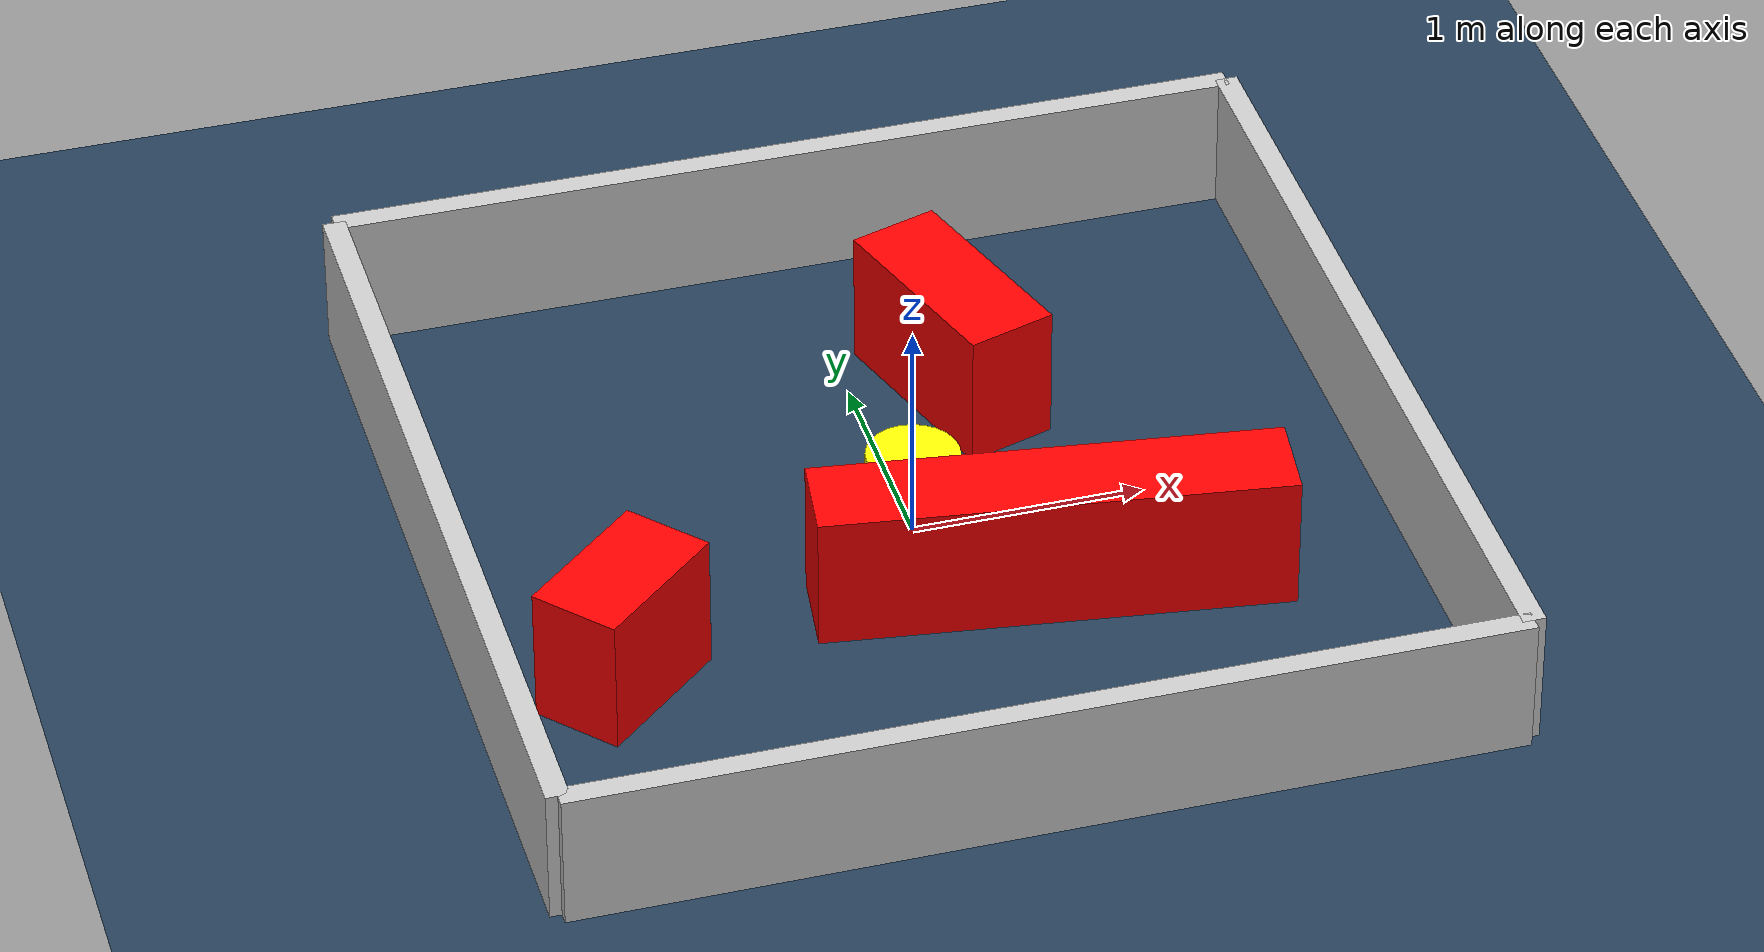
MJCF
<?xml version="1.0" ?>
<mujoco model="generated_environment">
  <option timestep="0.01" integrator="RK4" cone="elliptic"/>
  <default>
    <geom density="1"/>
  </default>
  <asset>
    <texture builtin="gradient" height="3072" rgb1="0.3 0.5 0.7" rgb2="0 0 0" type="skybox" width="512"/>
    <texture builtin="checker" height="300" mark="edge" markrgb="0.8 0.8 0.8" name="groundplane" rgb1="0.2 0.3 0.4" rgb2="0.1 0.2 0.3" type="2d" width="300"/>
    <material name="groundplane" reflectance="0.2" texrepeat="5 5" texture="groundplane" texuniform="true"/>
    <material name="robot" rgba="0.0 1.0 0.0 1"/>
  </asset>
  <worldbody>
    <light dir="0 0 -1" directional="true" pos="0 0 1.5"/>
    <geom condim="4" friction="1.0 0.005 0.001" material="groundplane" name="floor" size="0 0 0.05" type="plane"/>
    <body name="walls">
      <geom name="wall_1" condim="4" pos="-2.0 0.0 0.3" rgba="0.800000011920929 0.800000011920929 0.800000011920929 1.0" size="0.05 2.0 0.3" type="box"/>
      <geom name="wall_2" condim="4" pos="2.0 0.0 0.3" rgba="0.800000011920929 0.800000011920929 0.800000011920929 1.0" size="0.05 2.0 0.3" type="box"/>
      <geom name="wall_3" condim="4" pos="0.0 -2.0 0.3" rgba="0.800000011920929 0.800000011920929 0.800000011920929 1.0" size="2.0 0.05 0.3" type="box"/>
      <geom name="wall_4" condim="4" pos="0.0 2.0 0.3" rgba="0.800000011920929 0.800000011920929 0.800000011920929 1.0" size="2.0 0.05 0.3" type="box"/>
    </body>
    <body name="robot">
      <joint name="joint_x" type="slide" pos="0 0 0" axis="1 0 0"/>
      <joint name="joint_y" type="slide" pos="0 0 0" axis="0 1 0"/>
      <geom name="robot" type="sphere" pos="0.3 0.0 0.2" size="0.05" mass="5." friction="1.0 0.005 0.0001" condim="4" rgba="0.5 0.5 0.5 1.0"/>
      <site name="sensor_ball"/>
    </body>
    <body name="obstacle_movable_1">
      <geom name="obstacle_movable_1" condim="4" pos="0.0 0.0 0.2" euler="0 0 0.0" friction="1.0 0.005 0.001" rgba="1.0 1.0 0.0 1.0" size="0.2 0.2 0.0" type="cylinder" mass="0.1"/>
      <joint type="free"/>
    </body>
    <body name="obstacle_2_static">
      <geom name="obstacle_2_static" condim="4" pos="0.42671676781306234 0.8904039400789869 0.3" euler="0 0 287.4433227982602" friction="1.0 0.005 0.001" rgba="1 0 0 1" size="0.45679007315581277 0.2 0.3" type="box"/>
    </body>
    <body name="obstacle_3_static">
      <geom name="obstacle_3_static" condim="4" pos="0.4318675367346325 -0.5669824335766349 0.3" euler="0 0 172.1696092016047" friction="1.0 0.005 0.001" rgba="1 0 0 1" size="0.9956899018103555 0.2 0.3" type="box"/>
    </body>
    <body name="obstacle_4_static">
      <geom name="obstacle_4_static" condim="4" pos="-1.4147076011073974 -0.68068019189041 0.3" euler="0 0 41.36088263303427" friction="1.0 0.005 0.001" rgba="1 0 0 1" size="0.33760976610200577 0.2 0.3" type="box"/>
    </body>
  </worldbody>
  <actuator>
    <motor name="actuator_x" joint="joint_x" gear="1" ctrlrange="-1 1"/>
    <motor name="actuator_y" joint="joint_y" gear="1" ctrlrange="-1 1"/>
  </actuator>
</mujoco>
